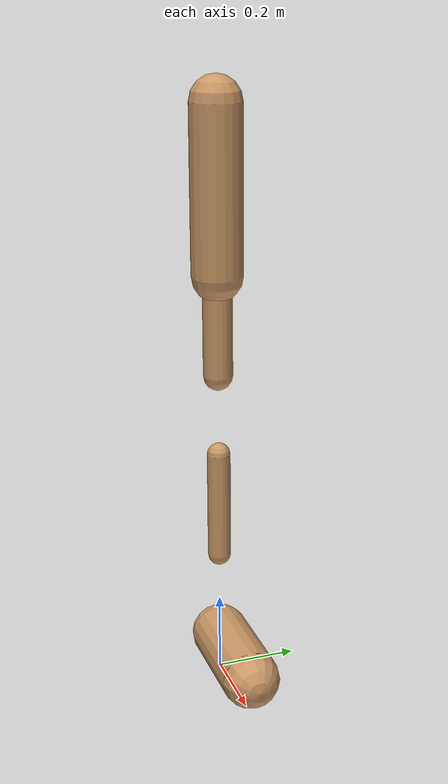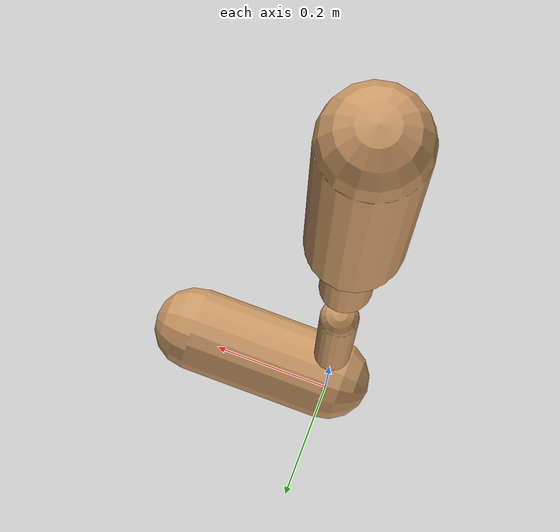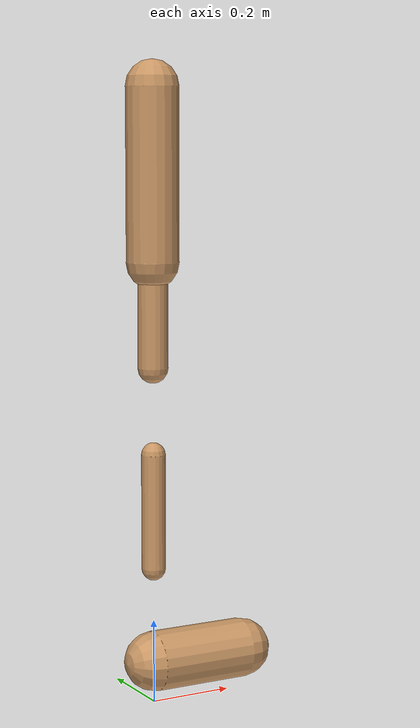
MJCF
<mujoco model="walker2d">
  <compiler angle="degree" coordinate="global" inertiafromgeom="true" />
  <default>
    <joint armature="0.01" damping=".1" limited="true" />
    <geom conaffinity="0" condim="3" contype="1" density="1000" friction="0.8 .1 .1" rgba="0.8 0.6 .4 1" />
  </default>
  <option integrator="RK4" timestep="0.002" />
  <worldbody>

    <body name="torso" pos="0 0 -0.43174732550190004">
      <joint armature="0" axis="1 0 0" damping="0" limited="false" name="ignorex" pos="0 0 0" stiffness="0" type="slide" />
      <joint armature="0" axis="0 0 1" damping="0" limited="false" name="ignorez" pos="0 0 0" ref="1.25" stiffness="0" type="slide" />
      <joint armature="0" axis="0 1 0" damping="0" limited="false" name="ignorey" pos="0 0 0" stiffness="0" type="hinge" />
      <geom fromto="0 0 1.45 0 0 1.05" name="torso_geom" size="0.06198248465983284" type="capsule" />
      <body name="thigh">
        <joint axis="0 -1 0" name="thigh_joint" pos="0 0 1.05" range="-150 0" type="hinge" />
        <geom fromto="0.0 0.0 1.05 0.0 0.0 0.8045118910272158" name="thigh_geom" size="0.035863164736126434" type="capsule" />
        <body name="leg" pos="0.0 0.0 0.2045118910272158">
          <joint axis="0 -1 0" name="leg_joint" pos="0 0 0.6" range="-150 0" type="hinge" />
          <geom fromto="0.0 0.0 0.6 0.0 0.0 0.32723543447468423" name="leg_geom" size="0.028690531788901144" type="capsule" />
          <body name="foot" pos="0.0 0.0 0.22723543447468422">
            <joint axis="0 -1 0" name="foot_joint" pos="0 0 0.1" range="-45 45" type="hinge" />
            <geom fromto="-0.0 0.0 0.1 0.2369211525188043 0.0 0.1" name="foot_geom" size="0.07126176230251684" type="capsule" />
          </body>
        </body>
      </body>

      <body name="thigh_left">
        <joint axis="0 -1 0" name="thigh_left_joint" pos="0 0 1.05" range="-150 0" type="hinge" />
        <geom fromto="0.0 0.0 1.05 0.0 0.0 0.8045118910272158" name="thigh_left_geom" rgba=".7 .3 .6 1" size="0.035863164736126434" type="capsule" />
        <body name="leg_left" pos="0.0 0.0 0.2045118910272158">
          <joint axis="0 -1 0" name="leg_left_joint" pos="0 0 0.6" range="-150 0" type="hinge" />
          <geom fromto="0.0 0.0 0.6 0.0 0.0 0.32723543447468423" name="leg_left_geom" rgba=".7 .3 .6 1" size="0.028690531788901144" type="capsule" />
          <body name="foot_left" pos="0.0 0.0 0.22723543447468422">
            <joint axis="0 -1 0" name="foot_left_joint" pos="0 0 0.1" range="-45 45" type="hinge" />
            <geom fromto="-0.0 0.0 0.1 0.2369211525188043 0.0 0.1" name="foot_left_geom" rgba=".7 .3 .6 1" size="0.07126176230251684" type="capsule" />
          </body>
        </body>
      </body>
    </body>
  </worldbody>
  <actuator>

    <motor ctrllimited="true" ctrlrange="-1.0 1.0" gear="100" joint="thigh_joint" />
    <motor ctrllimited="true" ctrlrange="-1.0 1.0" gear="100" joint="leg_joint" />
    <motor ctrllimited="true" ctrlrange="-1.0 1.0" gear="100" joint="foot_joint" />
    <motor ctrllimited="true" ctrlrange="-1.0 1.0" gear="100" joint="thigh_left_joint" />
    <motor ctrllimited="true" ctrlrange="-1.0 1.0" gear="100" joint="leg_left_joint" />
    <motor ctrllimited="true" ctrlrange="-1.0 1.0" gear="100" joint="foot_left_joint" />

  </actuator>
</mujoco>
